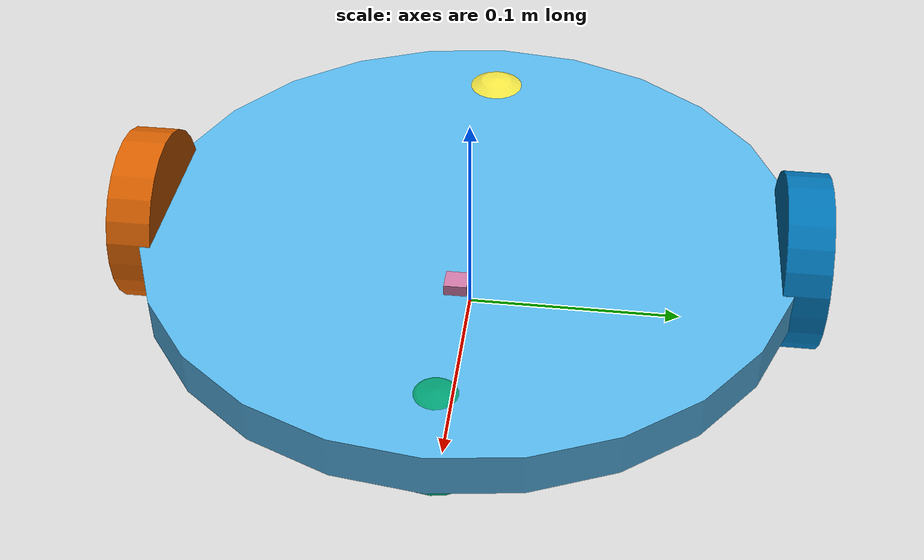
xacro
<?xml version="1.0"?>
<robot name="differential_wheeled_robot" xmlns:xacro="http://www.ros.org/wiki/xacro">

<xacro:include filename="$(find diff_wheeled_robot_description)/urdf/sonar_model.xacro"/>

 <!-- PROPERTY LIST -->
  <!--All units in m-kg-s-radians unit system -->
  <property name="M_PI" value="3.1415926535897931" />
  <property name="M_PI_2" value="1.570796327" />
  <property name="DEG_TO_RAD" value="0.017453293" />

  <!-- Main body radius and height -->
  <!-- Main Body Cylinder base   -->
  <property name="base_height" value="0.02" />
  <property name="base_radius" value="0.15" />
  <property name="base_mass" value="5" /> <!-- in kg-->

  <!-- caster wheel radius and height -->
  <!-- caster wheel mass -->
  <property name="caster_f_height" value="0.04" />
  <property name="caster_f_radius" value="0.025" />
  <property name="caster_f_mass" value="0.5" /> <!-- in kg-->

  <!-- caster wheel radius and height -->
  <!-- caster wheel mass -->
  <property name="caster_b_height" value="0.04" />
  <property name="caster_b_radius" value="0.025" />
  <property name="caster_b_mass" value="0.5" /> <!-- in kg-->

  <property name="wheel_radius" value="0.04" />
  <property name="wheel_height" value="0.02" />
  <property name="wheel_mass" value="2.5" /> <!-- in kg-->

  <property name="base_x_origin_to_wheel_origin" value="0.25" />
  <property name="base_y_origin_to_wheel_origin" value="0.3" />
  <property name="base_z_origin_to_wheel_origin" value="0.0" />

<!-- Wheels -->
  <property name="wheel_radius" value="0.04" />
  <property name="wheel_height" value="0.02" />
  <property name="wheel_mass" value="2.5" /> <!-- in kg-->

  <property name="base_x_origin_to_wheel_origin" value="0.25" />
  <property name="base_y_origin_to_wheel_origin" value="0.3" />
  <property name="base_z_origin_to_wheel_origin" value="0.0" />

  <!-- Hokuyo Laser scanner -->
  <property name="hokuyo_size" value="0.05" />

  <!-- BASE-FOOTPRINT -->
  <!-- base_footprint is a fictitious link(frame) that is on the ground right below base_link origin -->
  <link name="base_footprint">

    <visual>
        <origin xyz="0 0 0" rpy="0 0 0" />
        <geometry>
            <box size="0.001 0.001 0.001" />
        </geometry>
    </visual>
  </link>

  <gazebo reference="base_footprint">
    <turnGravityOff>false</turnGravityOff>
  </gazebo>

  <joint name="base_footprint_joint" type="fixed">
    <origin xyz="0 0 ${wheel_radius - base_z_origin_to_wheel_origin}" rpy="0 0 0" />
    <parent link="base_footprint"/>
    <child link="base_link" />
  </joint>

  <!-- BASE-LINK -->
  <!--Actual body/chassis of the robot-->
  <link name="base_link">
    <inertial>
      <mass value="${base_mass}" />
      <origin xyz="0 0 0" />
         <inertia ixx="0.001" ixy="0.0" ixz="0.0"
                 iyy="0.001" iyz="0.0"
                 izz="0.001" />

    </inertial>
    <visual>
      <origin xyz="0 0 0" rpy="0 0 0" />
      <geometry>

          <cylinder length="${base_height}" radius="${base_radius}" />

      </geometry>

    </visual>
    <collision>
      <origin xyz="0 0 0" rpy="0 0 0 " />
      <geometry>

          <cylinder length="${base_height}" radius="${base_radius}" />

      </geometry>
    </collision>
  </link>
  <gazebo reference="base_link">

    <turnGravityOff>false</turnGravityOff>
  </gazebo>

<!--Caster front  -->

    <link name="caster_front_link">

    <visual>
      <origin xyz="0 0.02 0" rpy="${M_PI/2} 0 0" />
      <geometry>
	<sphere radius="${caster_f_radius}" />
      </geometry>

    </visual>

      <collision>
        <geometry>

	<sphere radius="${caster_f_radius}" />

        </geometry>
      <origin xyz="0 0.02 0" rpy="${M_PI/2} 0 0" />
      </collision>
      <inertial>
        <mass value="${caster_f_mass}" />
        <origin xyz="0 0 0" />
        <inertia ixx="0.001" ixy="0.0" ixz="0.0"
                 iyy="0.001" iyz="0.0"
                 izz="0.001" />
      </inertial>
    </link>

 <joint name="caster_front_joint" type="fixed">
      <parent link="base_link"/>
      <child link="caster_front_link"/>
      <origin xyz="0.115 0.0 0.007" rpy="${-M_PI/2} 0 0"/>
    </joint>

  <gazebo reference="caster_front_link">
    <turnGravityOff>false</turnGravityOff>
  </gazebo>

<!--Caster back  -->

    <link name="caster_back_link">

    <visual>
      <origin xyz="0.02 0.02 0 " rpy="${M_PI/2} 0 0" />

      <geometry>

	<sphere radius="${caster_b_radius}" />

      </geometry>

    </visual>

      <collision>
        <geometry>
		<sphere radius="${caster_b_radius}" />
        </geometry>
      <origin xyz="0 0.02 0 " rpy="${M_PI/2} 0 0" />
      </collision>
      <inertial>
        <mass value="${caster_b_mass}" />
        <origin xyz="0 0 0" />
        <inertia ixx="0.001" ixy="0.0" ixz="0.0"
                 iyy="0.001" iyz="0.0"
                 izz="0.001" />
      </inertial>
    </link>

    <joint name="caster_back_joint" type="fixed">
      <parent link="base_link"/>
      <child link="caster_back_link"/>
      <origin xyz="-0.135 0.0 0.009" rpy="${-M_PI/2} 0 0"/>
    </joint>

  <gazebo reference="caster_back_link">
    <turnGravityOff>false</turnGravityOff>
  </gazebo>

<!-- Wheel Definitions -->
<!--right_wheel-->
    <link name="front_right_wheel">
      <visual>
        <origin xyz="0 0 0" rpy="${1*M_PI/2} 0  0 " />
        <geometry>
          <cylinder length="${wheel_height}" radius="${wheel_radius}" />
        </geometry>

      </visual>
      <collision>
        <origin xyz="0 0 0" rpy="${1*M_PI/2} 0 0 " />
        <geometry>
          <cylinder length="${wheel_height}" radius="${wheel_radius}" />
        </geometry>
      </collision>
      <inertial>
        <mass value="${wheel_mass}" />
        <origin xyz="0 0 0" />
        <inertia ixx="0.001" ixy="0.0" ixz="0.0"
                 iyy="0.001" iyz="0.0"
                 izz="0.001" />
      </inertial>
    </link>

    <joint name="front_right_wheel_joint" type="continuous">
      <parent link="base_link"/>
      <child link="front_right_wheel"/>
      <origin xyz="${0 * base_x_origin_to_wheel_origin} ${0.5 * base_y_origin_to_wheel_origin} ${base_z_origin_to_wheel_origin}" rpy="0 0 0" />
      <axis xyz="0 1 0" rpy="0  0" />
      <limit effort="100" velocity="100"/>
      <joint_properties damping="0.0" friction="0.0"/>
    </joint>

 <!-- Transmission is important to link the joints and the controller -->
    <transmission name="front_right_wheel_joint_trans">
      <type>transmission_interface/SimpleTransmission</type>
      <joint name="front_right_wheel_joint" />
      <actuator name="front_right_wheel_joint_motor">
        <hardwareInterface>EffortJointInterface</hardwareInterface>
        <mechanicalReduction>1</mechanicalReduction>
      </actuator>
    </transmission>

   <gazebo reference="front_right_wheel">
      <mu1 value="1.0"/>
      <mu2 value="1.0"/>
      <kp  value="10000000.0" />
      <kd  value="1.0" />
      <fdir1 value="1 0 0"/>

      <turnGravityOff>false</turnGravityOff>
    </gazebo>

<!--left_wheel-->
    <link name="front_left_wheel">
      <visual>
        <origin xyz="0 0 0" rpy="${1*M_PI/2} 0  0 " />
        <geometry>
          <cylinder length="${wheel_height}" radius="${wheel_radius}" />
        </geometry>

      </visual>
      <collision>
        <origin xyz="0 0 0" rpy="${1*M_PI/2} 0 0 " />
        <geometry>
          <cylinder length="${wheel_height}" radius="${wheel_radius}" />
        </geometry>
      </collision>
      <inertial>
        <mass value="${wheel_mass}" />
        <origin xyz="0 0 0" />
        <inertia ixx="0.001" ixy="0.0" ixz="0.0"
                 iyy="0.001" iyz="0.0"
                 izz="0.001" />
      </inertial>
    </link>

    <joint name="front_left_wheel_joint" type="continuous">
      <parent link="base_link"/>
      <child link="front_left_wheel"/>
      <origin xyz="${0 * base_x_origin_to_wheel_origin} ${-0.5 * base_y_origin_to_wheel_origin} ${base_z_origin_to_wheel_origin}" rpy="0 0 0" />
      <axis xyz="0 1 0" rpy="0  0" />
      <limit effort="100" velocity="100"/>
      <joint_properties damping="0.0" friction="0.0"/>
    </joint>
 <!-- Transmission is important to link the joints and the controller -->
    <transmission name="front_left_wheel_joint_trans">
      <type>transmission_interface/SimpleTransmission</type>
      <joint name="front_left_wheel_joint" />
      <actuator name="front_left_wheel_joint_motor">
        <hardwareInterface>EffortJointInterface</hardwareInterface>
        <mechanicalReduction>1</mechanicalReduction>
      </actuator>
    </transmission>

    <gazebo reference="front_left_wheel">
      <mu1 value="1.0"/>
      <mu2 value="1.0"/>
      <kp  value="10000000.0" />
      <kd  value="1.0" />
      <fdir1 value="1 0 0"/>

      <turnGravityOff>false</turnGravityOff>
    </gazebo>
  <!-- SENSORS-->
  <sonar_sensor parent="base_link" name="differential_wheeled_robot" ros_topic="/distance" update_rate="10" min_range="0.2" max_range="1" field_of_view="25" ray_count="2" >
    <origin xyz="0.05 0 0.01" rpy="0 0 0" />
  </sonar_sensor>

  <!-- Differential drive controller  -->
  <gazebo>
    <plugin name="differential_drive_controller" filename="libgazebo_ros_diff_drive.so">

      <rosDebugLevel>Debug</rosDebugLevel>
      <publishWheelTF>false</publishWheelTF>
      <robotNamespace>/</robotNamespace>
      <publishTf>1</publishTf>
      <publishWheelJointState>false</publishWheelJointState>
      <alwaysOn>true</alwaysOn>
      <updateRate>100.0</updateRate>
      <leftJoint>front_left_wheel_joint</leftJoint>
      <rightJoint>front_right_wheel_joint</rightJoint>
      <wheelSeparation>${2*base_radius}</wheelSeparation>
      <wheelDiameter>${2*wheel_radius}</wheelDiameter>
      <broadcastTF>1</broadcastTF>
      <wheelTorque>30</wheelTorque>
      <wheelAcceleration>1.8</wheelAcceleration>
      <commandTopic>cmd_vel</commandTopic>
      <odometryFrame>odom</odometryFrame>
      <odometryTopic>odom</odometryTopic>
      <robotBaseFrame>base_footprint</robotBaseFrame>

    </plugin>
  </gazebo>

</robot>

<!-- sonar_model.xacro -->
<robot xmlns:xacro="http://www.ros.org/wiki/xacro">
  <xacro:macro name="sonar_sensor" params="name parent *origin ros_topic update_rate min_range max_range field_of_view ray_count">
    <joint name="${name}_joint" type="fixed">
      <xacro:insert_block name="origin" />
      <parent link="${parent}"/>
      <child link="${name}_link"/>
    </joint>

    <link name="${name}_link">
      <inertial>
        <mass value="0.001" />
        <origin xyz="0 0 0" rpy="0 0 0" />
        <inertia ixx="0.000000017" ixy="0" ixz="0" iyy="0.000000017" iyz="0" izz="0.000000017" />
      </inertial>
      <visual>
        <origin xyz="0 0 0" rpy="0 0 0" />
        <geometry>
          <box size="0.01 0.01 0.01" />
        </geometry>
      </visual>
      <collision>
        <origin xyz="0 0 0" rpy="0 0 0" />
        <geometry>
          <box size="0.01 0.01 0.01" />
        </geometry>
      </collision>
    </link>

    <gazebo reference="${name}_link">
      <sensor type="ray" name="${name}">
        <always_on>true</always_on>
        <update_rate>${update_rate}</update_rate>
        <pose>0 0 0 0 0 0</pose>
        <visualize>true</visualize>
        <ray>
          <scan>
            <horizontal>
              <samples>${ray_count}</samples>
              <resolution>1</resolution>
              <min_angle>-${field_of_view/2}</min_angle>
              <max_angle> ${field_of_view/2}</max_angle>
            </horizontal>
            <vertical>
              <samples>${ray_count}</samples>
              <resolution>1</resolution>
              <min_angle>-${field_of_view/2}</min_angle>
              <max_angle> ${field_of_view/2}</max_angle>
            </vertical>
          </scan>
          <range>
            <min>${min_range}</min>
            <max>${max_range}</max>
            <resolution>0.01</resolution>
          </range>
        </ray>

        <plugin name="gazebo_ros_${name}_controller" filename="libhector_gazebo_ros_sonar.so">
          <gaussianNoise>0.005</gaussianNoise>
          <topicName>${ros_topic}</topicName>
          <frameId>${name}_link</frameId>
        </plugin>
      </sensor>
    </gazebo>
  </xacro:macro>
</robot>
